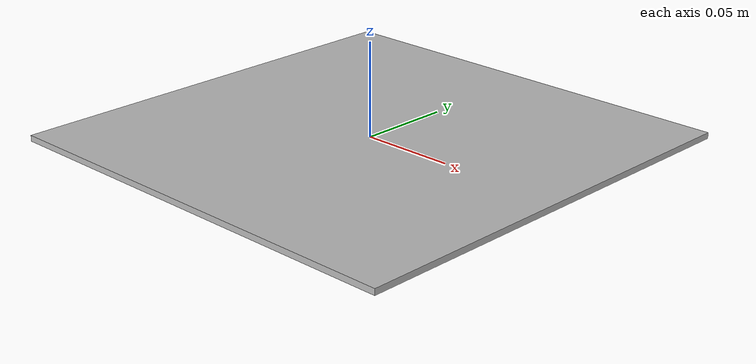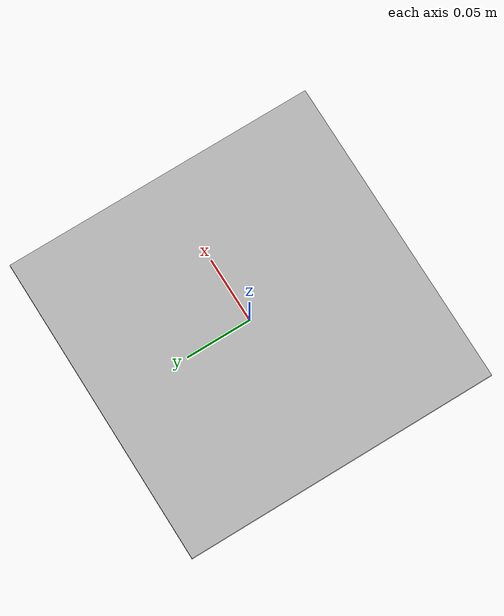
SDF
<?xml version="1.0"?>
<sdf version="1.6">
  <world name="Micro-Gravity">

    <plugin filename="gz-sim-physics-system"
            name="gz::sim::systems::Physics">
    </plugin>

    <plugin filename="gz-sim-user-commands-system"
            name="gz::sim::systems::UserCommands">
    </plugin>

    <plugin filename="gz-sim-scene-broadcaster-system"
            name="gz::sim::systems::SceneBroadcaster">
    </plugin>

    <include>
      <uri>https://fuel.gazebosim.org/1.0/OpenRobotics/models/Sun</uri>
    </include>

    <physics type="ode">
      <ode>
        <solver>
          <type>world</type>
        </solver>
        <constraints>
          <contact_max_correcting_vel>0.1</contact_max_correcting_vel>
          <contact_surface_layer>0.0001</contact_surface_layer>
        </constraints>
      </ode>
      <max_step_size>0.001</max_step_size>
    </physics>

    <gravity>0.0 0.0 0.0</gravity>

    <include>
      <uri>model://moon</uri>
      <pose>0 0 0 0 0 0</pose>
    </include>

  </world>
</sdf>

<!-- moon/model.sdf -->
<sdf version="1.5">
  <model name="moon">
    <static>true</static>
    <link name="link">
      <collision name="ground">
        <pose>0 0 0 0 0 0</pose>
        <geometry>
          <mesh>
            <scale>0.04 0.04 0.04</scale>
            <uri>model://moon/meshes/moon.dae</uri>
          </mesh>
        </geometry>
      </collision>
      <visual name="moon">
        <cast_shadows>true</cast_shadows>
        <pose>0 0 0 0 0 0</pose>
        <geometry>
          <mesh>
            <scale>0.04 0.04 0.04</scale>
            <uri>model://moon/meshes/moon.dae</uri>
          </mesh>
        </geometry>
      </visual>
    </link>
  </model>
</sdf>
